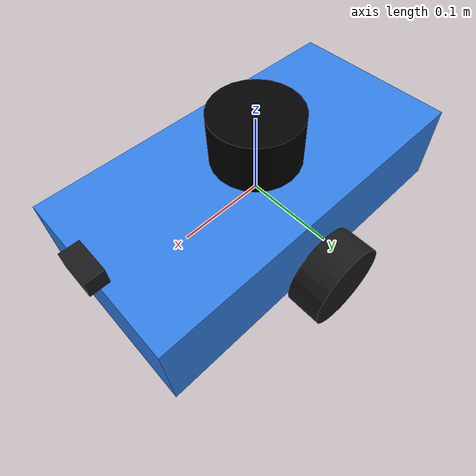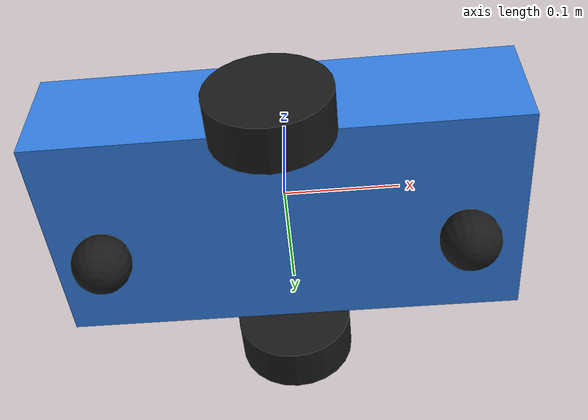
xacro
<?xml version="1.0"?>
<robot name="my_robot" xmlns:xacro="http://www.ros.org/wiki/xacro">
  <xacro:include filename="$(find my_robot)/urdf/camera.xacro" />
  <xacro:include filename="$(find my_robot)/urdf/lidar.xacro" />
  <xacro:property name="M_PI" value="3.1415926"/>
  <xacro:property name="base_mass"   value="2.0" />
  <xacro:property name="wheel_mass"  value="0.2" />
  <xacro:property name="base_size"   value="0.4 0.2 0.1" />
  <xacro:property name="wheel_radius" value="0.05" />
  <xacro:property name="wheel_length" value="0.04" />
  <xacro:property name="caster_radius" value="0.025" />
  <xacro:property name="caster_length" value="0.02" />

  <material name="body_color">
    <color rgba="0.2 0.5 0.9 1.0"/>
  </material>
  <material name="wheel_color">
    <color rgba="0.1 0.1 0.1 1.0"/>
  </material>
  <material name="black">
    <color rgba="0 0 0 1.0"/>
  </material>

  <xacro:camera/>
  <xacro:rplidar/>

  <!-- 底盘 -->
  <link name="base_link">
    <visual>
      <geometry><box size="${base_size}"/></geometry>
      <material name="body_color"/>
    </visual>
    <collision>
      <geometry><box size="${base_size}"/></geometry>
    </collision>
    <inertial>
      <mass value="${base_mass}"/>
      <inertia ixx="0.0083" ixy="0" ixz="0" iyy="0.0283" iyz="0" izz="0.0333"/>
    </inertial>
  </link>

  <!-- 驱动轮子宏 -->
  <xacro:macro name="drive_wheel" params="name y">
    <link name="${name}">
      <visual>
        <geometry><cylinder radius="${wheel_radius}" length="${wheel_length}"/></geometry>
        <material name="wheel_color"/>
      </visual>
      <collision>
        <geometry><cylinder radius="${wheel_radius}" length="${wheel_length}"/></geometry>
      </collision>
      <inertial>
        <mass value="${wheel_mass}"/>
        <inertia ixx="0.0002" ixy="0" ixz="0" iyy="0.0002" iyz="0" izz="0.0002"/>
      </inertial>
    </link>

    <joint name="${name}_joint" type="continuous">
      <parent link="base_link"/>
      <child link="${name}"/>
      <origin xyz="0 ${y} -0.05" rpy="1.5708 0 0"/>
      <axis xyz="0 0 -1"/>
    </joint>
  </xacro:macro>

  <!-- Caster轮（可自由转向） -->
  <xacro:macro name="caster_wheel" params="name x y z">
    <link name="${name}">
      <visual>
        <geometry><sphere radius="${caster_radius}"/></geometry>
        <material name="wheel_color"/>
      </visual>
      <collision>
        <geometry><sphere radius="${caster_radius}"/></geometry>
      </collision>
      <inertial>
        <mass value="0.01"/>
        <inertia ixx="0.00001" ixy="0" ixz="0" iyy="0.00001" iyz="0" izz="0.00001"/>
      </inertial>
    </link>

    <joint name="${name}_joint" type="fixed">
      <parent link="base_link"/>
      <child link="${name}"/>
      <origin xyz="${x} ${y} ${z}" rpy="0 0 0"/>
    </joint>

    <gazebo reference="${name}">
      <mu1>0.0</mu1>
      <mu2>0.0</mu2>
      <kp>1000000.0</kp> <kd>100.0</kd>     <material>Gazebo/Black</material>
    </gazebo>
  </xacro:macro>
  <!-- 驱动轮 -->
  <xacro:drive_wheel name="left_wheel"  y=" 0.12"/>
  <xacro:drive_wheel name="right_wheel" y="-0.12"/>
  <!-- Caster轮 -->
  <xacro:caster_wheel name="front_caster" x="0.15" y="0" z="-0.075"/>
  <xacro:caster_wheel name="rear_caster" x="-0.15" y="0" z="-0.075"/>
  <gazebo>
    <plugin
      filename="libignition-gazebo-diff-drive-system.so"
      name="ignition::gazebo::systems::DiffDrive">
      <left_joint>left_wheel_joint</left_joint>
      <right_joint>right_wheel_joint</right_joint>
      <wheel_separation>0.24</wheel_separation>
      <wheel_radius>0.05</wheel_radius>
      <max_wheel_torque>20</max_wheel_torque>
      <max_wheel_acceleration>20.0</max_wheel_acceleration>
      <topic>/cmd_vel</topic>
      <odom_topic>/model/my_robot/odometry</odom_topic>
      <odom_publish_frequency>30</odom_publish_frequency>
      <frame_id>my_robot/odom</frame_id>
      <child_frame_id>my_robot/base_link</child_frame_id>
    </plugin>
  </gazebo>

  <gazebo>
    <plugin filename="gz-sim-sensors-system" name="gz::sim::systems::Sensors">
      <render_engine>ogre2</render_engine>
    </plugin>
  </gazebo>

  <gazebo>
    <plugin
      filename="libgz-sim-joint-state-publisher-system.so"
      name="gz::sim::systems::JointStatePublisher">
      <update_rate>30</update_rate>
    </plugin>
  </gazebo>

</robot>

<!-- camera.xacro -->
<robot xmlns:xacro="http://www.ros.org/wiki/xacro">

  <xacro:macro name="camera">
    <link name="camera_link">
      <visual>
        <geometry><box size="0.02 0.04 0.02"/></geometry>
        <material name="wheel_color"/>
      </visual>
      <collision>
        <geometry><box size="0.02 0.04 0.02"/></geometry>
      </collision>
      <inertial>
        <mass value="0.05"/>
        <inertia ixx="0.00001" ixy="0" ixz="0" iyy="0.00001" iyz="0" izz="0.00001"/>
      </inertial>
    </link>

    <joint name="camera_joint" type="fixed">
      <parent link="base_link"/>
      <child link="camera_link"/>
      <origin xyz="0.2 0 0.06" rpy="0 0 0"/>
    </joint>

    <gazebo reference="camera_link">
      <sensor name="camera" type="camera">
        <update_rate>30</update_rate>
        <camera>
          <horizontal_fov>1.396</horizontal_fov>
          <image>
            <width>640</width>
            <height>480</height>
          </image>
          <clip>
            <near>0.1</near>
            <far>100</far>
          </clip>
        </camera>
        <topic>/camera/image</topic>
      </sensor>
    </gazebo>
  </xacro:macro>

</robot>

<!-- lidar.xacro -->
<robot xmlns:xacro="http://www.ros.org/wiki/xacro">

  <xacro:macro name="rplidar" params="prefix:=laser">
    <joint name="${prefix}_joint" type="fixed">
      <parent link="base_link"/>
      <child link="${prefix}_link"/>
      <origin xyz="0 0 0.08" rpy="0 0 0"/>
    </joint>

    <link name="${prefix}_link">
      <inertial>
        <mass value="0.1"/>
        <inertia ixx="0.01" ixy="0" ixz="0" iyy="0.01" iyz="0" izz="0.01"/>
      </inertial>
      <visual>
        <geometry><cylinder length="0.06" radius="0.05"/></geometry>
        <material name="black"/>
      </visual>
      <collision>
        <geometry><cylinder length="0.06" radius="0.05"/></geometry>
      </collision>
    </link>

    <gazebo reference="${prefix}_link">
      <sensor type="gpu_lidar" name="rplidar">
        <update_rate>20</update_rate>
        <lidar>
          <scan>
            <horizontal>
              <samples>360</samples>
              <resolution>1</resolution>
              <min_angle>-3</min_angle>
              <max_angle>3</max_angle>
            </horizontal>
          </scan>
          <range>
            <min>0.10</min>
            <max>30.0</max>
            <resolution>0.01</resolution>
          </range>
        </lidar>
        <topic>/lidar/scan</topic>
      </sensor>
    </gazebo>
  </xacro:macro>

</robot>
